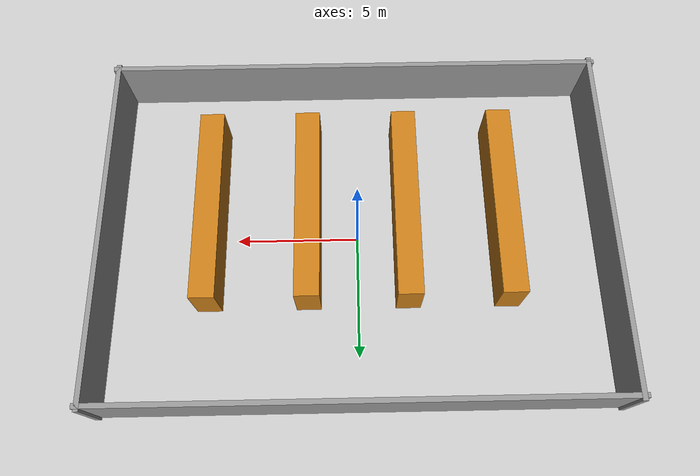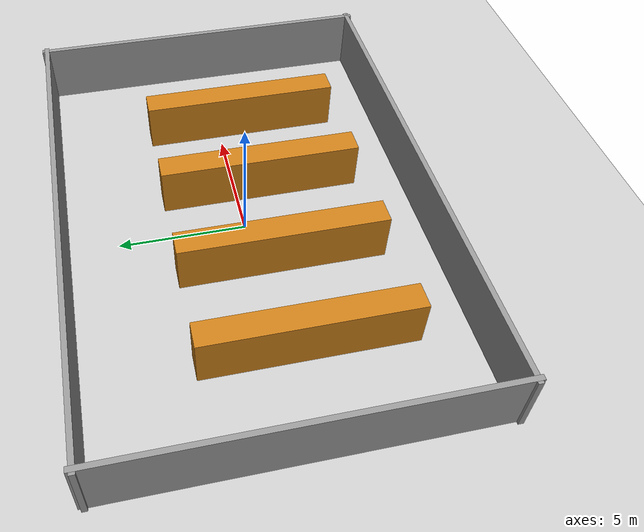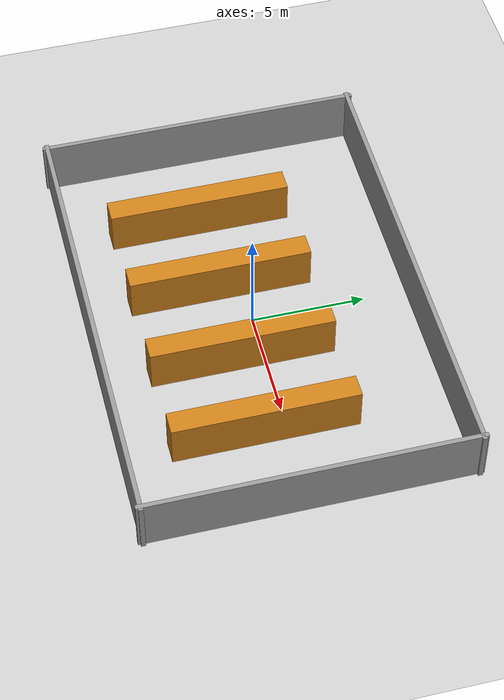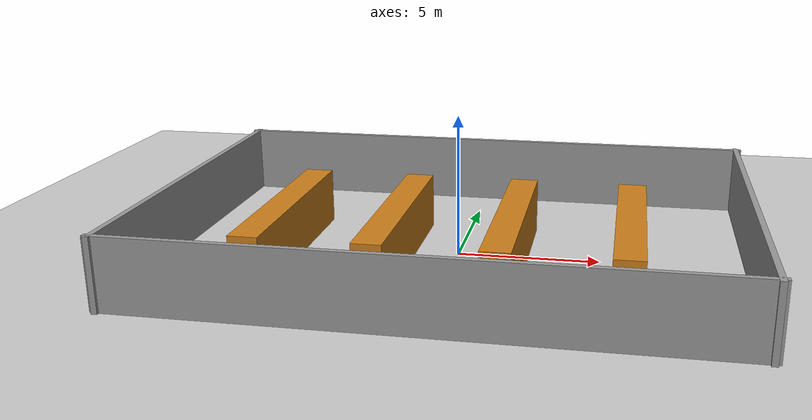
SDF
<?xml version="1.0" ?>
<sdf version="1.7">
  <world name="warehouse">

    <include>
      <uri>model://sun</uri>
    </include>
    <include>
      <uri>model://ground_plane</uri>
    </include>

    <physics type="ode">
      <real_time_update_rate>1000.0</real_time_update_rate>
      <max_step_size>0.001</max_step_size>
      <real_time_factor>1</real_time_factor>
    </physics>

    <model name="warehouse_structure">
      <static>true</static>

      <link name="wall_north">
        <pose>0 7 1.25 0 0 0</pose>
        <collision name="collision">
          <geometry><box><size>20.4 0.2 2.5</size></box></geometry>
        </collision>
        <visual name="visual">
          <geometry><box><size>20.4 0.2 2.5</size></box></geometry>
          <material><ambient>0.6 0.6 0.6 1</ambient></material>
        </visual>
      </link>

      <link name="wall_south">
        <pose>0 -7 1.25 0 0 0</pose>
        <collision name="collision">
          <geometry><box><size>20.4 0.2 2.5</size></box></geometry>
        </collision>
        <visual name="visual">
          <geometry><box><size>20.4 0.2 2.5</size></box></geometry>
          <material><ambient>0.6 0.6 0.6 1</ambient></material>
        </visual>
      </link>

      <link name="wall_east">
        <pose>10 0 1.25 0 0 0</pose>
        <collision name="collision">
          <geometry><box><size>0.2 14.4 2.5</size></box></geometry>
        </collision>
        <visual name="visual">
          <geometry><box><size>0.2 14.4 2.5</size></box></geometry>
          <material><ambient>0.6 0.6 0.6 1</ambient></material>
        </visual>
      </link>

      <link name="wall_west">
        <pose>-10 0 1.25 0 0 0</pose>
        <collision name="collision">
          <geometry><box><size>0.2 14.4 2.5</size></box></geometry>
        </collision>
        <visual name="visual">
          <geometry><box><size>0.2 14.4 2.5</size></box></geometry>
          <material><ambient>0.6 0.6 0.6 1</ambient></material>
        </visual>
      </link>

      <link name="shelf_1">
        <pose>-6 -1 1.0 0 0 0</pose>
        <collision name="collision">
          <geometry><box><size>1.0 8.0 2.0</size></box></geometry>
        </collision>
        <visual name="visual">
          <geometry><box><size>1.0 8.0 2.0</size></box></geometry>
          <material><ambient>0.8 0.5 0.1 1</ambient></material>
        </visual>
      </link>

      <link name="shelf_2">
        <pose>-2 -1 1.0 0 0 0</pose>
        <collision name="collision">
          <geometry><box><size>1.0 8.0 2.0</size></box></geometry>
        </collision>
        <visual name="visual">
          <geometry><box><size>1.0 8.0 2.0</size></box></geometry>
          <material><ambient>0.8 0.5 0.1 1</ambient></material>
        </visual>
      </link>

      <link name="shelf_3">
        <pose>2 -1 1.0 0 0 0</pose>
        <collision name="collision">
          <geometry><box><size>1.0 8.0 2.0</size></box></geometry>
        </collision>
        <visual name="visual">
          <geometry><box><size>1.0 8.0 2.0</size></box></geometry>
          <material><ambient>0.8 0.5 0.1 1</ambient></material>
        </visual>
      </link>

      <link name="shelf_4">
        <pose>6 -1 1.0 0 0 0</pose>
        <collision name="collision">
          <geometry><box><size>1.0 8.0 2.0</size></box></geometry>
        </collision>
        <visual name="visual">
          <geometry><box><size>1.0 8.0 2.0</size></box></geometry>
          <material><ambient>0.8 0.5 0.1 1</ambient></material>
        </visual>
      </link>

    </model>

    <plugin name="gazebo_ros_state" filename="libgazebo_ros_state.so">
      <ros>
        <namespace>gazebo</namespace>
      </ros>
      <update_rate>10.0</update_rate>
    </plugin>

    <gui fullscreen="0">
      <camera name="user_camera">
        <pose>0 -16 14 0 0.6 1.5708</pose>
      </camera>
    </gui>

  </world>
</sdf>
